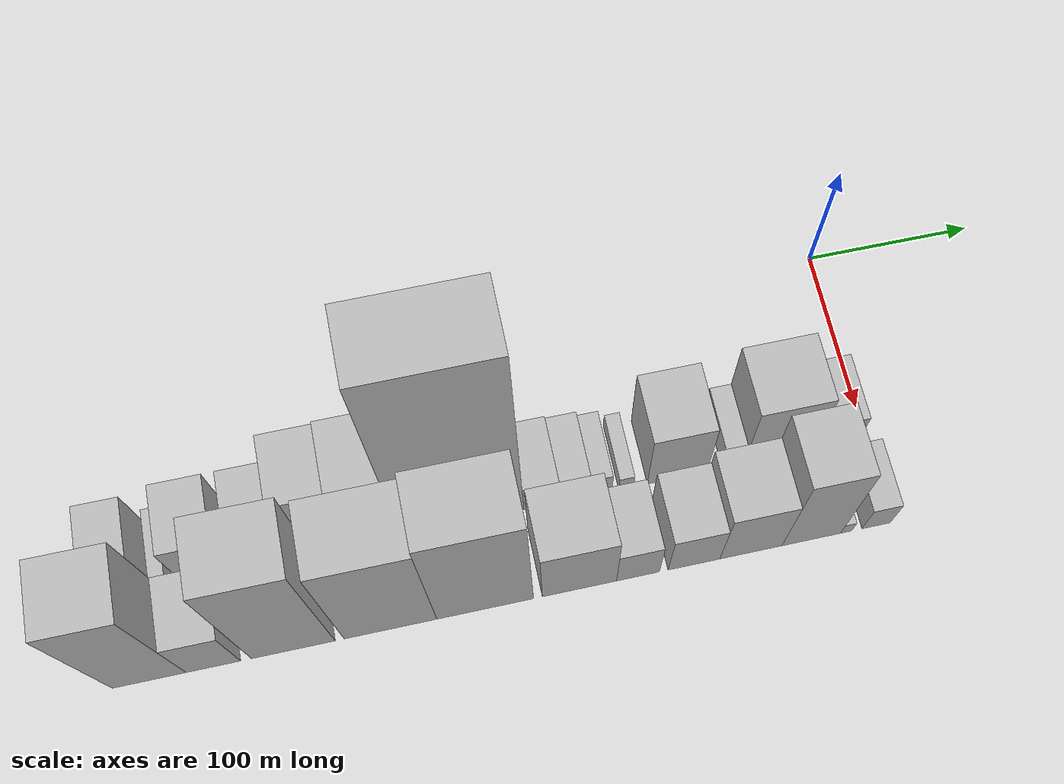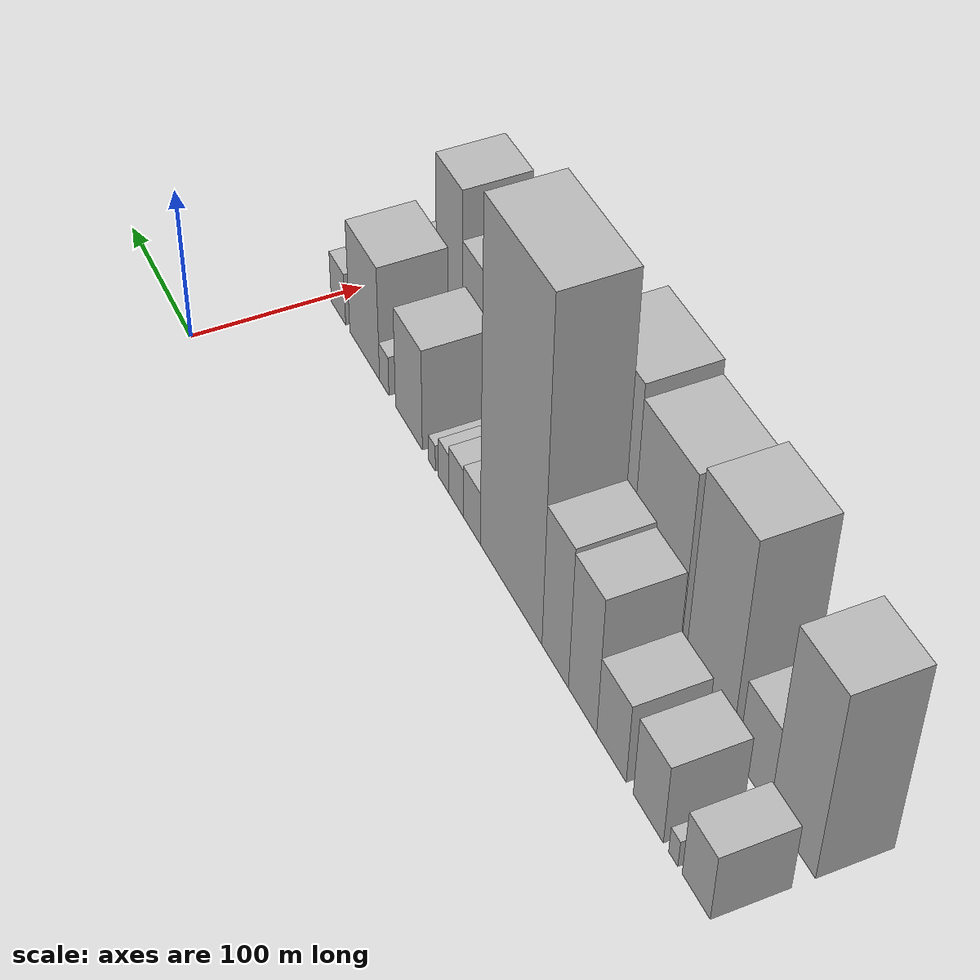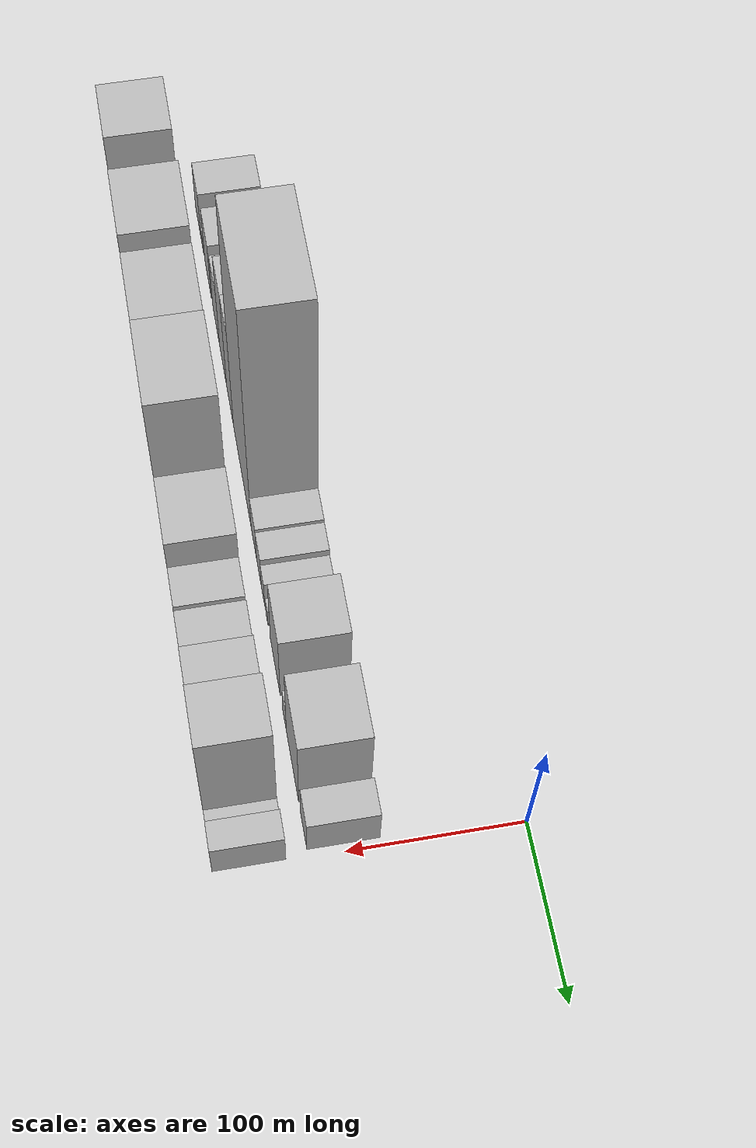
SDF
<sdf version="1.6">
 <world name="default">
  <model name="building_1">
   <static>1</static>
   <pose>100.0000 -431.0499 0 0.000000 0.000000 0.000000</pose>
   <link name="link">
    <pose>0 0 22.50 0 0 0</pose>
    <collision name="collision"><geometry><box><size>40.0000 25.9003 45.0000</size></box></geometry></collision>
    <visual name="visual">
     <cast_shadows>0</cast_shadows>
     <geometry><box><size>40.0000 25.9003 45.0000</size></box></geometry>
     <material>
      <script>
       <uri>model://HANNAS_wall/materials/scripts</uri>
       <uri>model://HANNAS_wall/materials/textures</uri>
       <name>vrc/HANNAS_wall</name>
      </script>
     </material>
    </visual>
   </link>
  </model>
  <model name="building_2">
   <static>1</static>
   <pose>100.0000 -409.7361 0 0.000000 0.000000 0.000000</pose>
   <link name="link">
    <pose>0 0 9.00 0 0 0</pose>
    <collision name="collision"><geometry><box><size>40.0000 8.7272 18.0000</size></box></geometry></collision>
    <visual name="visual">
     <cast_shadows>0</cast_shadows>
     <geometry><box><size>40.0000 8.7272 18.0000</size></box></geometry>
     <material>
      <script>
       <uri>model://HANNAS_wall/materials/scripts</uri>
       <uri>model://HANNAS_wall/materials/textures</uri>
       <name>vrc/HANNAS_wall</name>
      </script>
     </material>
    </visual>
   </link>
  </model>
  <model name="building_3">
   <static>1</static>
   <pose>100.0000 -385.6956 0 0.000000 0.000000 0.000000</pose>
   <link name="link">
    <pose>0 0 27.00 0 0 0</pose>
    <collision name="collision"><geometry><box><size>40.0000 29.3539 54.0000</size></box></geometry></collision>
    <visual name="visual">
     <cast_shadows>0</cast_shadows>
     <geometry><box><size>40.0000 29.3539 54.0000</size></box></geometry>
     <material>
      <script>
       <uri>model://HANNAS_wall/materials/scripts</uri>
       <uri>model://HANNAS_wall/materials/textures</uri>
       <name>vrc/HANNAS_wall</name>
      </script>
     </material>
    </visual>
   </link>
  </model>
  <model name="building_4">
   <static>1</static>
   <pose>100.0000 -348.9732 0 0.000000 0.000000 0.000000</pose>
   <link name="link">
    <pose>0 0 27.00 0 0 0</pose>
    <collision name="collision"><geometry><box><size>40.0000 30.0909 54.0000</size></box></geometry></collision>
    <visual name="visual">
     <cast_shadows>0</cast_shadows>
     <geometry><box><size>40.0000 30.0909 54.0000</size></box></geometry>
     <material>
      <script>
       <uri>model://HANNAS_wall/materials/scripts</uri>
       <uri>model://HANNAS_wall/materials/textures</uri>
       <name>vrc/HANNAS_wall</name>
      </script>
     </material>
    </visual>
   </link>
  </model>
  <model name="building_5">
   <static>1</static>
   <pose>100.0000 -318.9866 0 0.000000 0.000000 0.000000</pose>
   <link name="link">
    <pose>0 0 46.50 0 0 0</pose>
    <collision name="collision"><geometry><box><size>40.0000 29.8823 93.0000</size></box></geometry></collision>
    <visual name="visual">
     <cast_shadows>0</cast_shadows>
     <geometry><box><size>40.0000 29.8823 93.0000</size></box></geometry>
     <material>
      <script>
       <uri>model://HANNAS_wall/materials/scripts</uri>
       <uri>model://HANNAS_wall/materials/textures</uri>
       <name>vrc/HANNAS_wall</name>
      </script>
     </material>
    </visual>
   </link>
  </model>
  <model name="building_6">
   <static>1</static>
   <pose>100.0000 -289.5992 0 0.000000 0.000000 0.000000</pose>
   <link name="link">
    <pose>0 0 48.00 0 0 0</pose>
    <collision name="collision"><geometry><box><size>40.0000 28.8924 96.0000</size></box></geometry></collision>
    <visual name="visual">
     <cast_shadows>0</cast_shadows>
     <geometry><box><size>40.0000 28.8924 96.0000</size></box></geometry>
     <material>
      <script>
       <uri>model://HANNAS_wall/materials/scripts</uri>
       <uri>model://HANNAS_wall/materials/textures</uri>
       <name>vrc/HANNAS_wall</name>
      </script>
     </material>
    </visual>
   </link>
  </model>
  <model name="building_7">
   <static>1</static>
   <pose>100.0000 -239.4603 0 0.000000 0.000000 0.000000</pose>
   <link name="link">
    <pose>0 0 111.00 0 0 0</pose>
    <collision name="collision"><geometry><box><size>40.0000 71.3854 222.0000</size></box></geometry></collision>
    <visual name="visual">
     <cast_shadows>0</cast_shadows>
     <geometry><box><size>40.0000 71.3854 222.0000</size></box></geometry>
     <material>
      <script>
       <uri>model://HANNAS_wall/materials/scripts</uri>
       <uri>model://HANNAS_wall/materials/textures</uri>
       <name>vrc/HANNAS_wall</name>
      </script>
     </material>
    </visual>
   </link>
  </model>
  <model name="building_8">
   <static>1</static>
   <pose>100.0000 -193.3095 0 0.000000 0.000000 0.000000</pose>
   <link name="link">
    <pose>0 0 18.00 0 0 0</pose>
    <collision name="collision"><geometry><box><size>40.0000 20.9163 36.0000</size></box></geometry></collision>
    <visual name="visual">
     <cast_shadows>0</cast_shadows>
     <geometry><box><size>40.0000 20.9163 36.0000</size></box></geometry>
     <material>
      <script>
       <uri>model://HANNAS_wall/materials/scripts</uri>
       <uri>model://HANNAS_wall/materials/textures</uri>
       <name>vrc/HANNAS_wall</name>
      </script>
     </material>
    </visual>
   </link>
  </model>
  <model name="building_9">
   <static>1</static>
   <pose>100.0000 -173.7902 0 0.000000 0.000000 0.000000</pose>
   <link name="link">
    <pose>0 0 16.50 0 0 0</pose>
    <collision name="collision"><geometry><box><size>40.0000 18.1223 33.0000</size></box></geometry></collision>
    <visual name="visual">
     <cast_shadows>0</cast_shadows>
     <geometry><box><size>40.0000 18.1223 33.0000</size></box></geometry>
     <material>
      <script>
       <uri>model://HANNAS_wall/materials/scripts</uri>
       <uri>model://HANNAS_wall/materials/textures</uri>
       <name>vrc/HANNAS_wall</name>
      </script>
     </material>
    </visual>
   </link>
  </model>
  <model name="building_10">
   <static>1</static>
   <pose>100.0000 -158.3925 0 0.000000 0.000000 0.000000</pose>
   <link name="link">
    <pose>0 0 13.50 0 0 0</pose>
    <collision name="collision"><geometry><box><size>40.0000 12.6730 27.0000</size></box></geometry></collision>
    <visual name="visual">
     <cast_shadows>0</cast_shadows>
     <geometry><box><size>40.0000 12.6730 27.0000</size></box></geometry>
     <material>
      <script>
       <uri>model://HANNAS_wall/materials/scripts</uri>
       <uri>model://HANNAS_wall/materials/textures</uri>
       <name>vrc/HANNAS_wall</name>
      </script>
     </material>
    </visual>
   </link>
  </model>
  <model name="building_11">
   <static>1</static>
   <pose>100.0000 -143.6604 0 0.000000 0.000000 0.000000</pose>
   <link name="link">
    <pose>0 0 9.00 0 0 0</pose>
    <collision name="collision"><geometry><box><size>40.0000 8.7914 18.0000</size></box></geometry></collision>
    <visual name="visual">
     <cast_shadows>0</cast_shadows>
     <geometry><box><size>40.0000 8.7914 18.0000</size></box></geometry>
     <material>
      <script>
       <uri>model://HANNAS_wall/materials/scripts</uri>
       <uri>model://HANNAS_wall/materials/textures</uri>
       <name>vrc/HANNAS_wall</name>
      </script>
     </material>
    </visual>
   </link>
  </model>
  <model name="building_12">
   <static>1</static>
   <pose>100.0000 -113.4471 0 0.000000 0.000000 0.000000</pose>
   <link name="link">
    <pose>0 0 34.50 0 0 0</pose>
    <collision name="collision"><geometry><box><size>40.0000 35.6351 69.0000</size></box></geometry></collision>
    <visual name="visual">
     <cast_shadows>0</cast_shadows>
     <geometry><box><size>40.0000 35.6351 69.0000</size></box></geometry>
     <material>
      <script>
       <uri>model://HANNAS_wall/materials/scripts</uri>
       <uri>model://HANNAS_wall/materials/textures</uri>
       <name>vrc/HANNAS_wall</name>
      </script>
     </material>
    </visual>
   </link>
  </model>
  <model name="building_13">
   <static>1</static>
   <pose>100.0000 -80.2408 0 0.000000 0.000000 0.000000</pose>
   <link name="link">
    <pose>0 0 13.50 0 0 0</pose>
    <collision name="collision"><geometry><box><size>40.0000 12.7775 27.0000</size></box></geometry></collision>
    <visual name="visual">
     <cast_shadows>0</cast_shadows>
     <geometry><box><size>40.0000 12.7775 27.0000</size></box></geometry>
     <material>
      <script>
       <uri>model://HANNAS_wall/materials/scripts</uri>
       <uri>model://HANNAS_wall/materials/textures</uri>
       <name>vrc/HANNAS_wall</name>
      </script>
     </material>
    </visual>
   </link>
  </model>
  <model name="building_14">
   <static>1</static>
   <pose>100.0000 -52.7818 0 0.000000 0.000000 0.000000</pose>
   <link name="link">
    <pose>0 0 39.00 0 0 0</pose>
    <collision name="collision"><geometry><box><size>40.0000 42.1404 78.0000</size></box></geometry></collision>
    <visual name="visual">
     <cast_shadows>0</cast_shadows>
     <geometry><box><size>40.0000 42.1404 78.0000</size></box></geometry>
     <material>
      <script>
       <uri>model://HANNAS_wall/materials/scripts</uri>
       <uri>model://HANNAS_wall/materials/textures</uri>
       <name>vrc/HANNAS_wall</name>
      </script>
     </material>
    </visual>
   </link>
  </model>
  <model name="building_15">
   <static>1</static>
   <pose>100.0000 -15.1668 0 0.000000 0.000000 0.000000</pose>
   <link name="link">
    <pose>0 0 18.00 0 0 0</pose>
    <collision name="collision"><geometry><box><size>40.0000 21.0897 36.0000</size></box></geometry></collision>
    <visual name="visual">
     <cast_shadows>0</cast_shadows>
     <geometry><box><size>40.0000 21.0897 36.0000</size></box></geometry>
     <material>
      <script>
       <uri>model://HANNAS_wall/materials/scripts</uri>
       <uri>model://HANNAS_wall/materials/textures</uri>
       <name>vrc/HANNAS_wall</name>
      </script>
     </material>
    </visual>
   </link>
  </model>
  <model name="building_29">
   <static>1</static>
   <pose>152.0000 -423.7714 0 0.000000 0.000000 0.000000</pose>
   <link name="link">
    <pose>0 0 63.00 0 0 0</pose>
    <collision name="collision"><geometry><box><size>40.0000 40.4572 126.0000</size></box></geometry></collision>
    <visual name="visual">
     <cast_shadows>0</cast_shadows>
     <geometry><box><size>40.0000 40.4572 126.0000</size></box></geometry>
     <material>
      <script>
       <uri>model://HANNAS_wall/materials/scripts</uri>
       <uri>model://HANNAS_wall/materials/textures</uri>
       <name>vrc/HANNAS_wall</name>
      </script>
     </material>
    </visual>
   </link>
  </model>
  <model name="building_30">
   <static>1</static>
   <pose>152.0000 -388.5520 0 0.000000 0.000000 0.000000</pose>
   <link name="link">
    <pose>0 0 28.50 0 0 0</pose>
    <collision name="collision"><geometry><box><size>40.0000 29.9816 57.0000</size></box></geometry></collision>
    <visual name="visual">
     <cast_shadows>0</cast_shadows>
     <geometry><box><size>40.0000 29.9816 57.0000</size></box></geometry>
     <material>
      <script>
       <uri>model://HANNAS_wall/materials/scripts</uri>
       <uri>model://HANNAS_wall/materials/textures</uri>
       <name>vrc/HANNAS_wall</name>
      </script>
     </material>
    </visual>
   </link>
  </model>
  <model name="building_31">
   <static>1</static>
   <pose>152.0000 -344.2569 0 0.000000 0.000000 0.000000</pose>
   <link name="link">
    <pose>0 0 70.50 0 0 0</pose>
    <collision name="collision"><geometry><box><size>40.0000 46.6085 141.0000</size></box></geometry></collision>
    <visual name="visual">
     <cast_shadows>0</cast_shadows>
     <geometry><box><size>40.0000 46.6085 141.0000</size></box></geometry>
     <material>
      <script>
       <uri>model://HANNAS_wall/materials/scripts</uri>
       <uri>model://HANNAS_wall/materials/textures</uri>
       <name>vrc/HANNAS_wall</name>
      </script>
     </material>
    </visual>
   </link>
  </model>
  <model name="building_32">
   <static>1</static>
   <pose>152.0000 -289.8983 0 0.000000 0.000000 0.000000</pose>
   <link name="link">
    <pose>0 0 66.00 0 0 0</pose>
    <collision name="collision"><geometry><box><size>40.0000 52.1088 132.0000</size></box></geometry></collision>
    <visual name="visual">
     <cast_shadows>0</cast_shadows>
     <geometry><box><size>40.0000 52.1088 132.0000</size></box></geometry>
     <material>
      <script>
       <uri>model://HANNAS_wall/materials/scripts</uri>
       <uri>model://HANNAS_wall/materials/textures</uri>
       <name>vrc/HANNAS_wall</name>
      </script>
     </material>
    </visual>
   </link>
  </model>
  <model name="building_33">
   <static>1</static>
   <pose>152.0000 -236.4168 0 0.000000 0.000000 0.000000</pose>
   <link name="link">
    <pose>0 0 70.50 0 0 0</pose>
    <collision name="collision"><geometry><box><size>40.0000 54.8543 141.0000</size></box></geometry></collision>
    <visual name="visual">
     <cast_shadows>0</cast_shadows>
     <geometry><box><size>40.0000 54.8543 141.0000</size></box></geometry>
     <material>
      <script>
       <uri>model://HANNAS_wall/materials/scripts</uri>
       <uri>model://HANNAS_wall/materials/textures</uri>
       <name>vrc/HANNAS_wall</name>
      </script>
     </material>
    </visual>
   </link>
  </model>
  <model name="building_34">
   <static>1</static>
   <pose>152.0000 -182.6708 0 0.000000 0.000000 0.000000</pose>
   <link name="link">
    <pose>0 0 37.50 0 0 0</pose>
    <collision name="collision"><geometry><box><size>40.0000 42.6376 75.0000</size></box></geometry></collision>
    <visual name="visual">
     <cast_shadows>0</cast_shadows>
     <geometry><box><size>40.0000 42.6376 75.0000</size></box></geometry>
     <material>
      <script>
       <uri>model://HANNAS_wall/materials/scripts</uri>
       <uri>model://HANNAS_wall/materials/textures</uri>
       <name>vrc/HANNAS_wall</name>
      </script>
     </material>
    </visual>
   </link>
  </model>
  <model name="building_35">
   <static>1</static>
   <pose>152.0000 -148.9712 0 0.000000 0.000000 0.000000</pose>
   <link name="link">
    <pose>0 0 24.00 0 0 0</pose>
    <collision name="collision"><geometry><box><size>40.0000 24.7617 48.0000</size></box></geometry></collision>
    <visual name="visual">
     <cast_shadows>0</cast_shadows>
     <geometry><box><size>40.0000 24.7617 48.0000</size></box></geometry>
     <material>
      <script>
       <uri>model://HANNAS_wall/materials/scripts</uri>
       <uri>model://HANNAS_wall/materials/textures</uri>
       <name>vrc/HANNAS_wall</name>
      </script>
     </material>
    </visual>
   </link>
  </model>
  <model name="building_36">
   <static>1</static>
   <pose>152.0000 -116.5907 0 0.000000 0.000000 0.000000</pose>
   <link name="link">
    <pose>0 0 27.00 0 0 0</pose>
    <collision name="collision"><geometry><box><size>40.0000 29.9994 54.0000</size></box></geometry></collision>
    <visual name="visual">
     <cast_shadows>0</cast_shadows>
     <geometry><box><size>40.0000 29.9994 54.0000</size></box></geometry>
     <material>
      <script>
       <uri>model://HANNAS_wall/materials/scripts</uri>
       <uri>model://HANNAS_wall/materials/textures</uri>
       <name>vrc/HANNAS_wall</name>
      </script>
     </material>
    </visual>
   </link>
  </model>
  <model name="building_37">
   <static>1</static>
   <pose>152.0000 -83.3506 0 0.000000 0.000000 0.000000</pose>
   <link name="link">
    <pose>0 0 36.00 0 0 0</pose>
    <collision name="collision"><geometry><box><size>40.0000 36.4808 72.0000</size></box></geometry></collision>
    <visual name="visual">
     <cast_shadows>0</cast_shadows>
     <geometry><box><size>40.0000 36.4808 72.0000</size></box></geometry>
     <material>
      <script>
       <uri>model://HANNAS_wall/materials/scripts</uri>
       <uri>model://HANNAS_wall/materials/textures</uri>
       <name>vrc/HANNAS_wall</name>
      </script>
     </material>
    </visual>
   </link>
  </model>
  <model name="building_38">
   <static>1</static>
   <pose>152.0000 -47.8489 0 0.000000 0.000000 0.000000</pose>
   <link name="link">
    <pose>0 0 52.50 0 0 0</pose>
    <collision name="collision"><geometry><box><size>40.0000 34.5227 105.0000</size></box></geometry></collision>
    <visual name="visual">
     <cast_shadows>0</cast_shadows>
     <geometry><box><size>40.0000 34.5227 105.0000</size></box></geometry>
     <material>
      <script>
       <uri>model://HANNAS_wall/materials/scripts</uri>
       <uri>model://HANNAS_wall/materials/textures</uri>
       <name>vrc/HANNAS_wall</name>
      </script>
     </material>
    </visual>
   </link>
  </model>
  <model name="building_39">
   <static>1</static>
   <pose>152.0000 -27.2419 0 0.000000 0.000000 0.000000</pose>
   <link name="link">
    <pose>0 0 7.50 0 0 0</pose>
    <collision name="collision"><geometry><box><size>40.0000 6.6913 15.0000</size></box></geometry></collision>
    <visual name="visual">
     <cast_shadows>0</cast_shadows>
     <geometry><box><size>40.0000 6.6913 15.0000</size></box></geometry>
     <material>
      <script>
       <uri>model://HANNAS_wall/materials/scripts</uri>
       <uri>model://HANNAS_wall/materials/textures</uri>
       <name>vrc/HANNAS_wall</name>
      </script>
     </material>
    </visual>
   </link>
  </model>
  <model name="building_40">
   <static>1</static>
   <pose>152.0000 -9.4666 0 0.000000 0.000000 0.000000</pose>
   <link name="link">
    <pose>0 0 16.50 0 0 0</pose>
    <collision name="collision"><geometry><box><size>40.0000 16.8592 33.0000</size></box></geometry></collision>
    <visual name="visual">
     <cast_shadows>0</cast_shadows>
     <geometry><box><size>40.0000 16.8592 33.0000</size></box></geometry>
     <material>
      <script>
       <uri>model://HANNAS_wall/materials/scripts</uri>
       <uri>model://HANNAS_wall/materials/textures</uri>
       <name>vrc/HANNAS_wall</name>
      </script>
     </material>
    </visual>
   </link>
  </model>
 </world>
</sdf>
